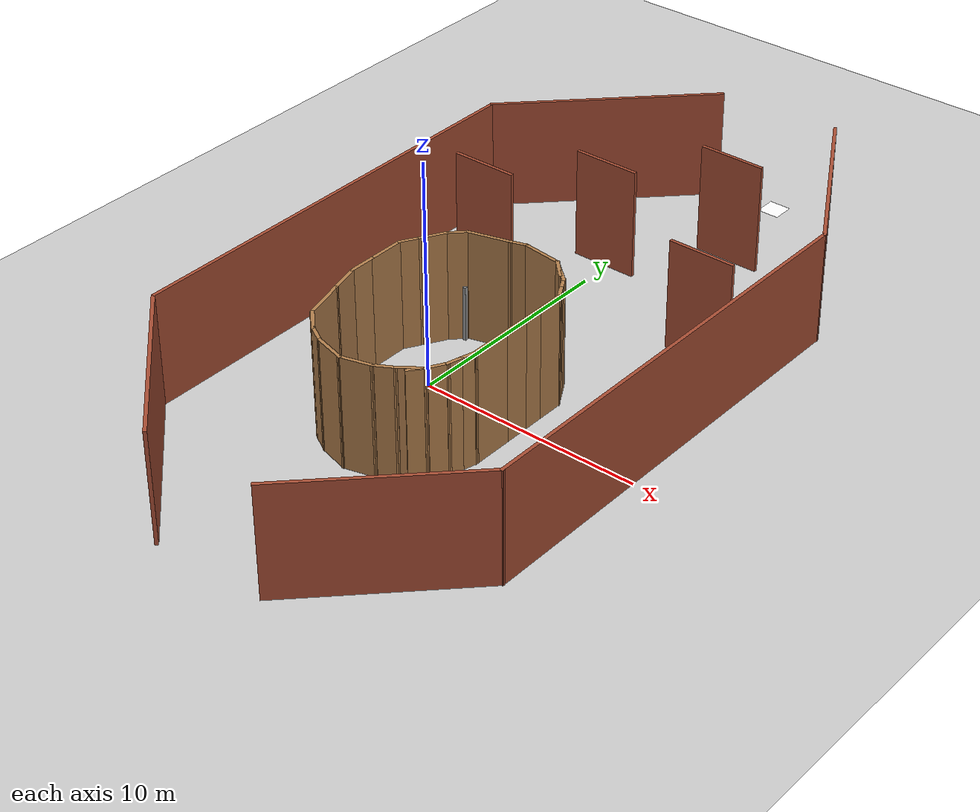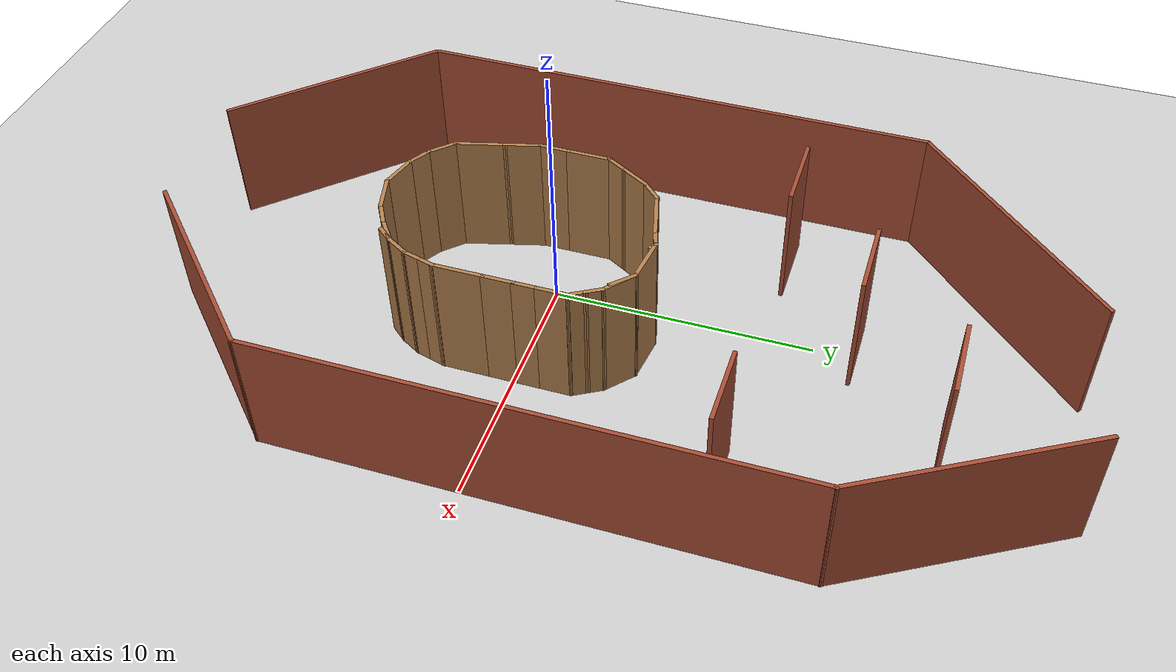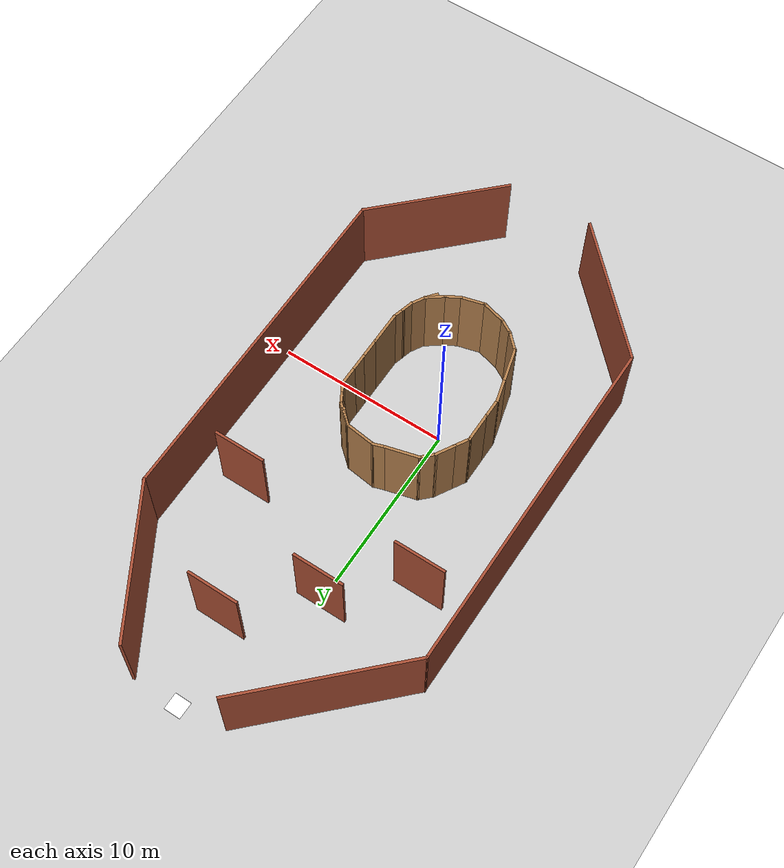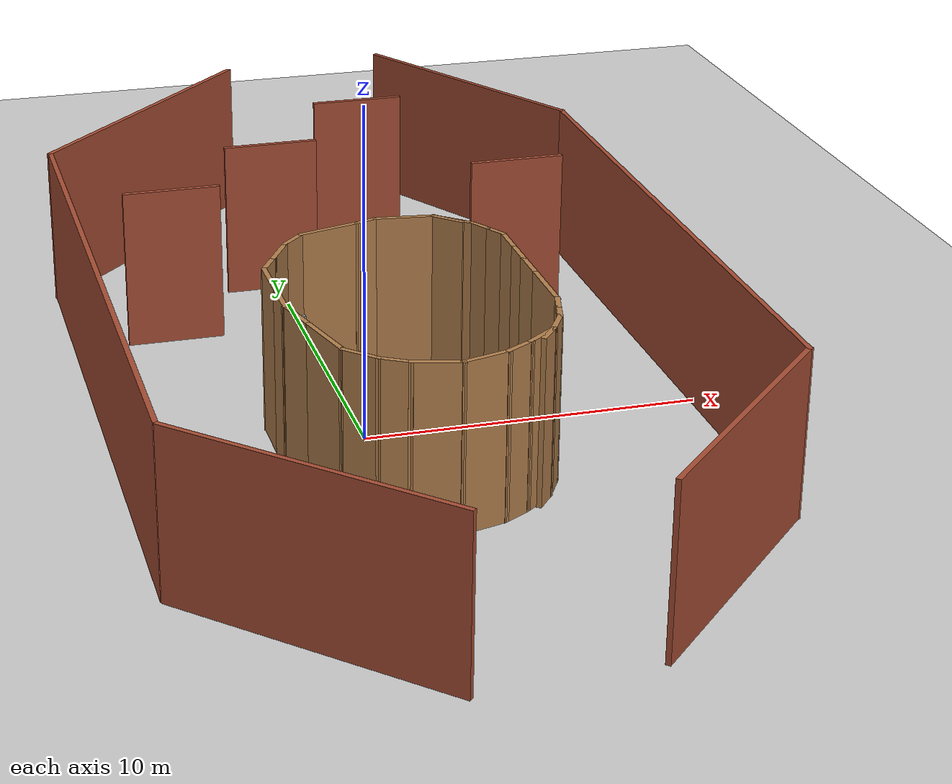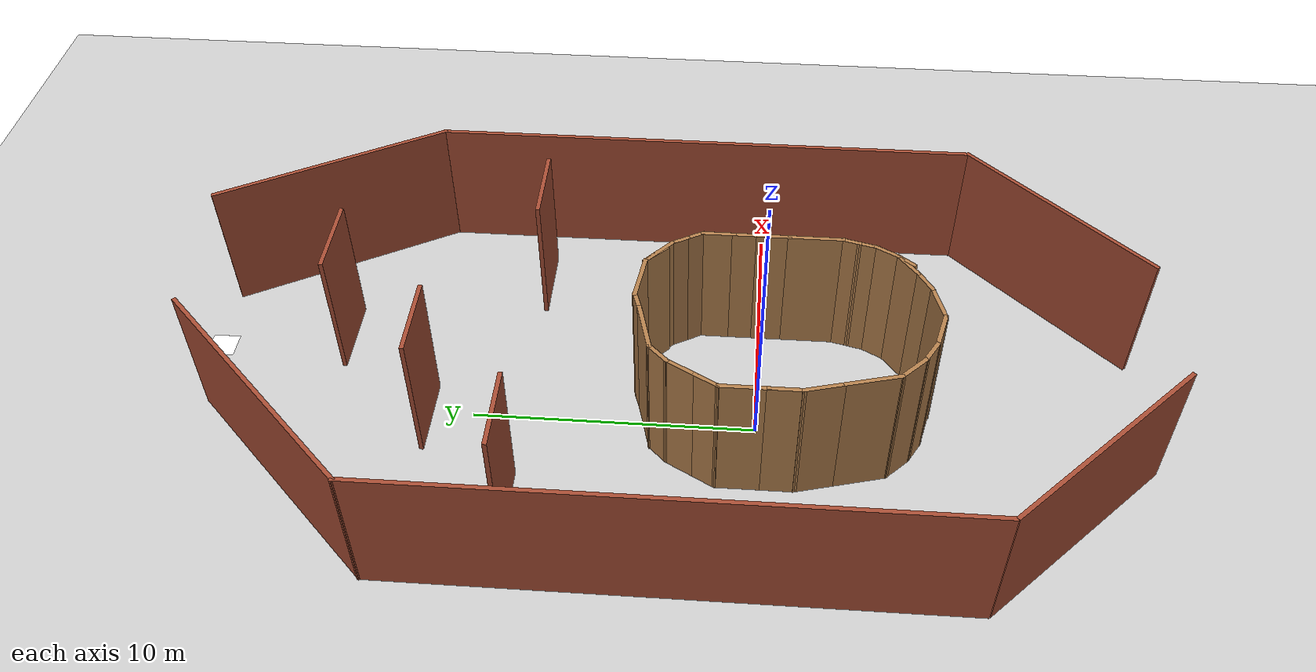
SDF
<sdf version="1.6">
 <world name="default">
  <light name="sun" type="directional">
   <pose>0 0 10 0 -0 0</pose>
   <diffuse>0.8 0.8 0.8 1</diffuse>
   <specular>0.2 0.2 0.2 1</specular>
   <attenuation>
    <range>1000</range>
    <constant>0.9</constant>
    <linear>0.01</linear>
    <quadratic>0.001</quadratic>
   </attenuation>
   <direction>-0.5 0.1 -0.9</direction>
  </light>
  <model name="ground_plane">
   <static>1</static>
   <link name="link">
    <collision name="collision">
     <geometry><plane><normal>0 0 1</normal><size>100 100</size></plane></geometry>
     <surface><friction><ode><mu>100</mu><mu2>50</mu2></ode></friction></surface>
    </collision>
    <visual name="visual">
     <cast_shadows>0</cast_shadows>
     <geometry><plane><normal>0 0 1</normal><size>100 100</size></plane></geometry>
     <material>
      <script><uri>file://media/materials/scripts/gazebo.material</uri><name>Gazebo/Grey</name></script>
     </material>
    </visual>
   </link>
  </model>
  <gravity>0 0 -9.8</gravity>
  <magnetic_field>6e-06 2.3e-05 -4.2e-05</magnetic_field>
  <atmosphere type="adiabatic"/>
  <physics name="default_physics" default="0" type="ode">
   <max_step_size>0.001</max_step_size>
   <real_time_factor>1</real_time_factor>
   <real_time_update_rate>1000</real_time_update_rate>
  </physics>
  <scene><ambient>0.4 0.4 0.4 1</ambient><background>0.7 0.7 0.7 1</background><shadows>1</shadows></scene>
  <spherical_coordinates>
   <surface_model>EARTH_WGS84</surface_model>
   <latitude_deg>0</latitude_deg>
   <longitude_deg>0</longitude_deg>
   <elevation>0</elevation>
   <heading_deg>0</heading_deg>
  </spherical_coordinates>
  <model name="test_world1">
   <pose>1.41889 3.20251 0 0 -0 0</pose>
   <link name="Wall_1">
    <collision name="Wall_1_Collision">
     <geometry><box><size>20 0.15 5</size></box></geometry>
     <pose>0 0 2.5 0 -0 0</pose>
    </collision>
    <visual name="Wall_1_Visual">
     <pose>0 0 2.5 0 -0 0</pose>
     <geometry><box><size>20 0.15 5</size></box></geometry>
     <material>
      <script><uri>file://media/materials/scripts/gazebo.material</uri><name>Gazebo/Bricks</name></script>
      <ambient>1 1 1 1</ambient>
     </material>
     <meta><layer>0</layer></meta>
    </visual>
    <pose>-8.54113 -0.692398 0 0 -0 -1.57082</pose>
   </link>
   <link name="Wall_10">
    <collision name="Wall_10_Collision">
     <geometry><box><size>0.75 0.15 5</size></box></geometry>
     <pose>0 0 2.5 0 -0 0</pose>
    </collision>
    <visual name="Wall_10_Visual">
     <pose>0 0 2.5 0 -0 0</pose>
     <geometry><box><size>0.75 0.15 5</size></box></geometry>
     <material>
      <script><uri>file://media/materials/scripts/gazebo.material</uri><name>Gazebo/Wood</name></script>
      <ambient>1 1 1 1</ambient>
     </material>
     <meta><layer>0</layer></meta>
    </visual>
    <pose>3.21111 -6.20201 0 0 -0 1.30762</pose>
   </link>
   <link name="Wall_100">
    <collision name="Wall_100_Collision">
     <geometry><box><size>9 0.15 5</size></box></geometry>
     <pose>0 0 2.5 0 -0 0</pose>
    </collision>
    <visual name="Wall_100_Visual">
     <pose>0 0 2.5 0 -0 0</pose>
     <geometry><box><size>9 0.15 5</size></box></geometry>
     <material>
      <script><uri>file://media/materials/scripts/gazebo.material</uri><name>Gazebo/Bricks</name></script>
      <ambient>1 1 1 1</ambient>
     </material>
     <meta><layer>0</layer></meta>
    </visual>
    <pose>6.32861 12.9835 0 0 -0 2.09441</pose>
   </link>
   <link name="Wall_102">
    <collision name="Wall_102_Collision">
     <geometry><box><size>3 0.15 5</size></box></geometry>
     <pose>0 0 2.5 0 -0 0</pose>
    </collision>
    <visual name="Wall_102_Visual">
     <pose>0 0 2.5 0 -0 0</pose>
     <geometry><box><size>3 0.15 5</size></box></geometry>
     <material>
      <script><uri>file://media/materials/scripts/gazebo.material</uri><name>Gazebo/Bricks</name></script>
      <ambient>1 1 1 1</ambient>
     </material>
     <meta><layer>0</layer></meta>
    </visual>
    <pose>2.18111 11.9818 0 0 -0 0</pose>
   </link>
   <link name="Wall_104">
    <collision name="Wall_104_Collision">
     <geometry><box><size>8.74983 0.15 5</size></box></geometry>
     <pose>0 0 2.5 0 -0 0</pose>
    </collision>
    <visual name="Wall_104_Visual">
     <pose>0 0 2.5 0 -0 0</pose>
     <geometry><box><size>8.74983 0.15 5</size></box></geometry>
     <material>
      <script><uri>file://media/materials/scripts/gazebo.material</uri><name>Gazebo/Bricks</name></script>
      <ambient>1 1 1 1</ambient>
     </material>
     <meta><layer>0</layer></meta>
    </visual>
    <pose>-5.45261 -13.7715 0 0 -0 -0.785398</pose>
   </link>
   <link name="Wall_106">
    <collision name="Wall_106_Collision">
     <geometry><box><size>8.5 0.15 5</size></box></geometry>
     <pose>0 0 2.5 0 -0 0</pose>
    </collision>
    <visual name="Wall_106_Visual">
     <pose>0 0 2.5 0 -0 0</pose>
     <geometry><box><size>8.5 0.15 5</size></box></geometry>
     <material>
      <script><uri>file://media/materials/scripts/gazebo.material</uri><name>Gazebo/Bricks</name></script>
      <ambient>1 1 1 1</ambient>
     </material>
     <meta><layer>0</layer></meta>
    </visual>
    <pose>5.58861 -13.6505 0 0 -0 -2.35628</pose>
   </link>
   <link name="Wall_11">
    <collision name="Wall_11_Collision">
     <geometry><box><size>2 0.15 5</size></box></geometry>
     <pose>0 0 2.5 0 -0 0</pose>
    </collision>
    <visual name="Wall_11_Visual">
     <pose>0 0 2.5 0 -0 0</pose>
     <geometry><box><size>2 0.15 5</size></box></geometry>
     <material>
      <script><uri>file://media/materials/scripts/gazebo.material</uri><name>Gazebo/Wood</name></script>
      <ambient>1 1 1 1</ambient>
     </material>
     <meta><layer>0</layer></meta>
    </visual>
    <pose>3.28911 -4.98751 0 0 -0 1.5708</pose>
   </link>
   <link name="Wall_12">
    <collision name="Wall_12_Collision">
     <geometry><box><size>1.25 0.15 5</size></box></geometry>
     <pose>0 0 2.5 0 -0 0</pose>
    </collision>
    <visual name="Wall_12_Visual">
     <pose>0 0 2.5 0 -0 0</pose>
     <geometry><box><size>1.25 0.15 5</size></box></geometry>
     <material>
      <script><uri>file://media/materials/scripts/gazebo.material</uri><name>Gazebo/Wood</name></script>
      <ambient>1 1 1 1</ambient>
     </material>
     <meta><layer>0</layer></meta>
    </visual>
    <pose>3.28911 -3.51251 0 0 -0 1.5708</pose>
   </link>
   <link name="Wall_13">
    <collision name="Wall_13_Collision">
     <geometry><box><size>1 0.15 5</size></box></geometry>
     <pose>0 0 2.5 0 -0 0</pose>
    </collision>
    <visual name="Wall_13_Visual">
     <pose>0 0 2.5 0 -0 0</pose>
     <geometry><box><size>1 0.15 5</size></box></geometry>
     <material>
      <script><uri>file://media/materials/scripts/gazebo.material</uri><name>Gazebo/Wood</name></script>
      <ambient>1 1 1 1</ambient>
     </material>
     <meta><layer>0</layer></meta>
    </visual>
    <pose>3.28911 -2.53751 0 0 -0 1.5708</pose>
   </link>
   <link name="Wall_14">
    <collision name="Wall_14_Collision">
     <geometry><box><size>1.25 0.15 5</size></box></geometry>
     <pose>0 0 2.5 0 -0 0</pose>
    </collision>
    <visual name="Wall_14_Visual">
     <pose>0 0 2.5 0 -0 0</pose>
     <geometry><box><size>1.25 0.15 5</size></box></geometry>
     <material>
      <script><uri>file://media/materials/scripts/gazebo.material</uri><name>Gazebo/Wood</name></script>
      <ambient>1 1 1 1</ambient>
     </material>
     <meta><layer>0</layer></meta>
    </visual>
    <pose>3.28911 -1.56251 0 0 -0 1.5708</pose>
   </link>
   <link name="Wall_15">
    <collision name="Wall_15_Collision">
     <geometry><box><size>0.75 0.15 5</size></box></geometry>
     <pose>0 0 2.5 0 -0 0</pose>
    </collision>
    <visual name="Wall_15_Visual">
     <pose>0 0 2.5 0 -0 0</pose>
     <geometry><box><size>0.75 0.15 5</size></box></geometry>
     <material>
      <script><uri>file://media/materials/scripts/gazebo.material</uri><name>Gazebo/Wood</name></script>
      <ambient>1 1 1 1</ambient>
     </material>
     <meta><layer>0</layer></meta>
    </visual>
    <pose>3.13911 -0.752511 0 0 -0 2.09408</pose>
   </link>
   <link name="Wall_16">
    <collision name="Wall_16_Collision">
     <geometry><box><size>0.75 0.15 5</size></box></geometry>
     <pose>0 0 2.5 0 -0 0</pose>
    </collision>
    <visual name="Wall_16_Visual">
     <pose>0 0 2.5 0 -0 0</pose>
     <geometry><box><size>0.75 0.15 5</size></box></geometry>
     <material>
      <script><uri>file://media/materials/scripts/gazebo.material</uri><name>Gazebo/Wood</name></script>
      <ambient>1 1 1 1</ambient>
     </material>
     <meta><layer>0</layer></meta>
    </visual>
    <pose>2.83911 -0.233011 0 0 -0 2.09491</pose>
   </link>
   <link name="Wall_17">
    <collision name="Wall_17_Collision">
     <geometry><box><size>1.44839 0.15 5</size></box></geometry>
     <pose>0 0 2.5 0 -0 0</pose>
    </collision>
    <visual name="Wall_17_Visual">
     <pose>0 0 2.5 0 -0 0</pose>
     <geometry><box><size>1.44839 0.15 5</size></box></geometry>
     <material>
      <script><uri>file://media/materials/scripts/gazebo.material</uri><name>Gazebo/Wood</name></script>
      <ambient>1 1 1 1</ambient>
     </material>
     <meta><layer>0</layer></meta>
    </visual>
    <pose>2.19911 0.452489 0 0 -0 2.42595</pose>
   </link>
   <link name="Wall_18">
    <collision name="Wall_18_Collision">
     <geometry><box><size>1.11425 0.15 5</size></box></geometry>
     <pose>0 0 2.5 0 -0 0</pose>
    </collision>
    <visual name="Wall_18_Visual">
     <pose>0 0 2.5 0 -0 0</pose>
     <geometry><box><size>1.11425 0.15 5</size></box></geometry>
     <material>
      <script><uri>file://media/materials/scripts/gazebo.material</uri><name>Gazebo/Wood</name></script>
      <ambient>1 1 1 1</ambient>
     </material>
     <meta><layer>0</layer></meta>
    </visual>
    <pose>2.05211 0.539989 0 0 -0 -0.778795</pose>
   </link>
   <link name="Wall_3">
    <collision name="Wall_3_Collision">
     <geometry><box><size>20 0.15 5</size></box></geometry>
     <pose>0 0 2.5 0 -0 0</pose>
    </collision>
    <visual name="Wall_3_Visual">
     <pose>0 0 2.5 0 -0 0</pose>
     <geometry><box><size>20 0.15 5</size></box></geometry>
     <material>
      <script><uri>file://media/materials/scripts/gazebo.material</uri><name>Gazebo/Bricks</name></script>
      <ambient>1 1 1 1</ambient>
     </material>
     <meta><layer>0</layer></meta>
    </visual>
    <pose>8.54111 -0.773511 0 0 -0 1.5708</pose>
   </link>
   <link name="Wall_31">
    <collision name="Wall_31_Collision">
     <geometry><box><size>1 0.15 5</size></box></geometry>
     <pose>0 0 2.5 0 -0 0</pose>
    </collision>
    <visual name="Wall_31_Visual">
     <pose>0 0 2.5 0 -0 0</pose>
     <geometry><box><size>1 0.15 5</size></box></geometry>
     <material>
      <script><uri>file://media/materials/scripts/gazebo.material</uri><name>Gazebo/Wood</name></script>
      <ambient>1 1 1 1</ambient>
     </material>
     <meta><layer>0</layer></meta>
    </visual>
    <pose>1.33711 -8.66101 0 0 -0 -2.61792</pose>
   </link>
   <link name="Wall_32">
    <collision name="Wall_32_Collision">
     <geometry><box><size>1.5 0.15 5</size></box></geometry>
     <pose>0 0 2.5 0 -0 0</pose>
    </collision>
    <visual name="Wall_32_Visual">
     <pose>0 0 2.5 0 -0 0</pose>
     <geometry><box><size>1.5 0.15 5</size></box></geometry>
     <material>
      <script><uri>file://media/materials/scripts/gazebo.material</uri><name>Gazebo/Wood</name></script>
      <ambient>1 1 1 1</ambient>
     </material>
     <meta><layer>0</layer></meta>
    </visual>
    <pose>0.317109 -9.04801 0 0 -0 -2.88008</pose>
   </link>
   <link name="Wall_33">
    <collision name="Wall_33_Collision">
     <geometry><box><size>1.5 0.15 5</size></box></geometry>
     <pose>0 0 2.5 0 -0 0</pose>
    </collision>
    <visual name="Wall_33_Visual">
     <pose>0 0 2.5 0 -0 0</pose>
     <geometry><box><size>1.5 0.15 5</size></box></geometry>
     <material>
      <script><uri>file://media/materials/scripts/gazebo.material</uri><name>Gazebo/Wood</name></script>
      <ambient>1 1 1 1</ambient>
     </material>
     <meta><layer>0</layer></meta>
    </visual>
    <pose>-0.986891 -9.04801 0 0 -0 2.88008</pose>
   </link>
   <link name="Wall_34">
    <collision name="Wall_34_Collision">
     <geometry><box><size>1 0.15 5</size></box></geometry>
     <pose>0 0 2.5 0 -0 0</pose>
    </collision>
    <visual name="Wall_34_Visual">
     <pose>0 0 2.5 0 -0 0</pose>
     <geometry><box><size>1 0.15 5</size></box></geometry>
     <material>
      <script><uri>file://media/materials/scripts/gazebo.material</uri><name>Gazebo/Wood</name></script>
      <ambient>1 1 1 1</ambient>
     </material>
     <meta><layer>0</layer></meta>
    </visual>
    <pose>-2.00739 -8.66101 0 0 -0 2.61851</pose>
   </link>
   <link name="Wall_44">
    <collision name="Wall_44_Collision">
     <geometry><box><size>0.15 0.15 2.5</size></box></geometry>
     <pose>0 0 1.25 0 -0 0</pose>
    </collision>
    <visual name="Wall_44_Visual">
     <pose>0 0 1.25 0 -0 0</pose>
     <geometry><box><size>0.15 0.15 2.5</size></box></geometry>
     <material>
      <script><uri>file://media/materials/scripts/gazebo.material</uri><name>Gazebo/Grey</name></script>
      <ambient>1 1 1 1</ambient>
     </material>
     <meta><layer>0</layer></meta>
    </visual>
    <pose>-2.4252 0.213611 0 0 -0 0</pose>
   </link>
   <link name="Wall_52">
    <collision name="Wall_52_Collision">
     <geometry><box><size>1.25 0.15 5</size></box></geometry>
     <pose>0 0 2.5 0 -0 0</pose>
    </collision>
    <visual name="Wall_52_Visual">
     <pose>0 0 2.5 0 -0 0</pose>
     <geometry><box><size>1.25 0.15 5</size></box></geometry>
     <material>
      <script><uri>file://media/materials/scripts/gazebo.material</uri><name>Gazebo/Wood</name></script>
      <ambient>1 1 1 1</ambient>
     </material>
     <meta><layer>0</layer></meta>
    </visual>
    <pose>-2.76439 -8.05951 0 0 -0 2.35555</pose>
   </link>
   <link name="Wall_53">
    <collision name="Wall_53_Collision">
     <geometry><box><size>2 0.15 5</size></box></geometry>
     <pose>0 0 2.5 0 -0 0</pose>
    </collision>
    <visual name="Wall_53_Visual">
     <pose>0 0 2.5 0 -0 0</pose>
     <geometry><box><size>2 0.15 5</size></box></geometry>
     <material>
      <script><uri>file://media/materials/scripts/gazebo.material</uri><name>Gazebo/Wood</name></script>
      <ambient>1 1 1 1</ambient>
     </material>
     <meta><layer>0</layer></meta>
    </visual>
    <pose>-3.39239 -6.77701 0 0 -0 1.83269</pose>
   </link>
   <link name="Wall_54">
    <collision name="Wall_54_Collision">
     <geometry><box><size>1.5 0.15 5</size></box></geometry>
     <pose>0 0 2.5 0 -0 0</pose>
    </collision>
    <visual name="Wall_54_Visual">
     <pose>0 0 2.5 0 -0 0</pose>
     <geometry><box><size>1.5 0.15 5</size></box></geometry>
     <material>
      <script><uri>file://media/materials/scripts/gazebo.material</uri><name>Gazebo/Wood</name></script>
      <ambient>1 1 1 1</ambient>
     </material>
     <meta><layer>0</layer></meta>
    </visual>
    <pose>-3.80689 -5.23151 0 0 -0 1.83302</pose>
   </link>
   <link name="Wall_55">
    <collision name="Wall_55_Collision">
     <geometry><box><size>1.25 0.15 5</size></box></geometry>
     <pose>0 0 2.5 0 -0 0</pose>
    </collision>
    <visual name="Wall_55_Visual">
     <pose>0 0 2.5 0 -0 0</pose>
     <geometry><box><size>1.25 0.15 5</size></box></geometry>
     <material>
      <script><uri>file://media/materials/scripts/gazebo.material</uri><name>Gazebo/Wood</name></script>
      <ambient>1 1 1 1</ambient>
     </material>
     <meta><layer>0</layer></meta>
    </visual>
    <pose>-3.98189 -4.02951 0 0 -0 1.5708</pose>
   </link>
   <link name="Wall_56">
    <collision name="Wall_56_Collision">
     <geometry><box><size>1.75 0.15 5</size></box></geometry>
     <pose>0 0 2.5 0 -0 0</pose>
    </collision>
    <visual name="Wall_56_Visual">
     <pose>0 0 2.5 0 -0 0</pose>
     <geometry><box><size>1.75 0.15 5</size></box></geometry>
     <material>
      <script><uri>file://media/materials/scripts/gazebo.material</uri><name>Gazebo/Wood</name></script>
      <ambient>1 1 1 1</ambient>
     </material>
     <meta><layer>0</layer></meta>
    </visual>
    <pose>-3.98189 -2.67951 0 0 -0 1.5708</pose>
   </link>
   <link name="Wall_57">
    <collision name="Wall_57_Collision">
     <geometry><box><size>1 0.15 5</size></box></geometry>
     <pose>0 0 2.5 0 -0 0</pose>
    </collision>
    <visual name="Wall_57_Visual">
     <pose>0 0 2.5 0 -0 0</pose>
     <geometry><box><size>1 0.15 5</size></box></geometry>
     <material>
      <script><uri>file://media/materials/scripts/gazebo.material</uri><name>Gazebo/Wood</name></script>
      <ambient>1 1 1 1</ambient>
     </material>
     <meta><layer>0</layer></meta>
    </visual>
    <pose>-3.76939 -1.51151 0 0 -0 1.04713</pose>
   </link>
   <link name="Wall_58">
    <collision name="Wall_58_Collision">
     <geometry><box><size>1.25 0.15 5</size></box></geometry>
     <pose>0 0 2.5 0 -0 0</pose>
    </collision>
    <visual name="Wall_58_Visual">
     <pose>0 0 2.5 0 -0 0</pose>
     <geometry><box><size>1.25 0.15 5</size></box></geometry>
     <material>
      <script><uri>file://media/materials/scripts/gazebo.material</uri><name>Gazebo/Wood</name></script>
      <ambient>1 1 1 1</ambient>
     </material>
     <meta><layer>0</layer></meta>
    </visual>
    <pose>-3.28189 -0.667011 0 0 -0 1.04737</pose>
   </link>
   <link name="Wall_59">
    <collision name="Wall_59_Collision">
     <geometry><box><size>1 0.15 5</size></box></geometry>
     <pose>0 0 2.5 0 -0 0</pose>
    </collision>
    <visual name="Wall_59_Visual">
     <pose>0 0 2.5 0 -0 0</pose>
     <geometry><box><size>1 0.15 5</size></box></geometry>
     <material>
      <script><uri>file://media/materials/scripts/gazebo.material</uri><name>Gazebo/Wood</name></script>
      <ambient>1 1 1 1</ambient>
     </material>
     <meta><layer>0</layer></meta>
    </visual>
    <pose>-2.70639 0.109989 0 0 -0 0.785398</pose>
   </link>
   <link name="Wall_60">
    <collision name="Wall_60_Collision">
     <geometry><box><size>2 0.15 5</size></box></geometry>
     <pose>0 0 2.5 0 -0 0</pose>
    </collision>
    <visual name="Wall_60_Visual">
     <pose>0 0 2.5 0 -0 0</pose>
     <geometry><box><size>2 0.15 5</size></box></geometry>
     <material>
      <script><uri>file://media/materials/scripts/gazebo.material</uri><name>Gazebo/Wood</name></script>
      <ambient>1 1 1 1</ambient>
     </material>
     <meta><layer>0</layer></meta>
    </visual>
    <pose>-1.51239 0.649989 0 0 -0 0.261891</pose>
   </link>
   <link name="Wall_61">
    <collision name="Wall_61_Collision">
     <geometry><box><size>0.810025 0.15 5</size></box></geometry>
     <pose>0 0 2.5 0 -0 0</pose>
    </collision>
    <visual name="Wall_61_Visual">
     <pose>0 0 2.5 0 -0 0</pose>
     <geometry><box><size>0.810025 0.15 5</size></box></geometry>
     <material>
      <script><uri>file://media/materials/scripts/gazebo.material</uri><name>Gazebo/Wood</name></script>
      <ambient>1 1 1 1</ambient>
     </material>
     <meta><layer>0</layer></meta>
    </visual>
    <pose>-0.304891 0.991489 0 0 -0 0.314088</pose>
   </link>
   <link name="Wall_62">
    <collision name="Wall_62_Collision">
     <geometry><box><size>1.86399 0.15 5</size></box></geometry>
     <pose>0 0 2.5 0 -0 0</pose>
    </collision>
    <visual name="Wall_62_Visual">
     <pose>0 0 2.5 0 -0 0</pose>
     <geometry><box><size>1.86399 0.15 5</size></box></geometry>
     <material>
      <script><uri>file://media/materials/scripts/gazebo.material</uri><name>Gazebo/Wood</name></script>
      <ambient>1 1 1 1</ambient>
     </material>
     <meta><layer>0</layer></meta>
    </visual>
    <pose>0.859109 0.985989 0 0 -0 -0.125803</pose>
   </link>
   <link name="Wall_65">
    <collision name="Wall_65_Collision">
     <geometry><box><size>1.21294 0.15 5</size></box></geometry>
     <pose>0 0 2.5 0 -0 0</pose>
    </collision>
    <visual name="Wall_65_Visual">
     <pose>0 0 2.5 0 -0 0</pose>
     <geometry><box><size>1.21294 0.15 5</size></box></geometry>
     <material>
      <script><uri>file://media/materials/scripts/gazebo.material</uri><name>Gazebo/Wood</name></script>
      <ambient>1 1 1 1</ambient>
     </material>
     <meta><layer>0</layer></meta>
    </visual>
    <pose>2.12911 -8.12801 0 0 -0 0.647264</pose>
   </link>
   <link name="Wall_7">
    <collision name="Wall_7_Collision">
     <geometry><box><size>0.820057 0.15 5</size></box></geometry>
     <pose>0 0 2.5 0 -0 0</pose>
    </collision>
    <visual name="Wall_7_Visual">
     <pose>0 0 2.5 0 -0 0</pose>
     <geometry><box><size>0.820057 0.15 5</size></box></geometry>
     <material>
      <script><uri>file://media/materials/scripts/gazebo.material</uri><name>Gazebo/Wood</name></script>
      <ambient>1 1 1 1</ambient>
     </material>
     <meta><layer>0</layer></meta>
    </visual>
    <pose>2.34161 -8.06751 0 0 -0 0.887901</pose>
   </link>
   <link name="Wall_8">
    <collision name="Wall_8_Collision">
     <geometry><box><size>1 0.15 5</size></box></geometry>
     <pose>0 0 2.5 0 -0 0</pose>
    </collision>
    <visual name="Wall_8_Visual">
     <pose>0 0 2.5 0 -0 0</pose>
     <geometry><box><size>1 0.15 5</size></box></geometry>
     <material>
      <script><uri>file://media/materials/scripts/gazebo.material</uri><name>Gazebo/Wood</name></script>
      <ambient>1 1 1 1</ambient>
     </material>
     <meta><layer>0</layer></meta>
    </visual>
    <pose>2.76561 -7.43951 0 0 -0 1.04713</pose>
   </link>
   <link name="Wall_87">
    <collision name="Wall_87_Collision">
     <geometry><box><size>3 0.15 5</size></box></geometry>
     <pose>0 0 2.5 0 -0 0</pose>
    </collision>
    <visual name="Wall_87_Visual">
     <pose>0 0 2.5 0 -0 0</pose>
     <geometry><box><size>3 0.15 5</size></box></geometry>
     <material>
      <script><uri>file://media/materials/scripts/gazebo.material</uri><name>Gazebo/Bricks</name></script>
      <ambient>1 1 1 1</ambient>
     </material>
     <meta><layer>0</layer></meta>
    </visual>
    <pose>-5.41089 5.00249 0 0 -0 0</pose>
   </link>
   <link name="Wall_9">
    <collision name="Wall_9_Collision">
     <geometry><box><size>0.75 0.15 5</size></box></geometry>
     <pose>0 0 2.5 0 -0 0</pose>
    </collision>
    <visual name="Wall_9_Visual">
     <pose>0 0 2.5 0 -0 0</pose>
     <geometry><box><size>0.75 0.15 5</size></box></geometry>
     <material>
      <script><uri>file://media/materials/scripts/gazebo.material</uri><name>Gazebo/Wood</name></script>
      <ambient>1 1 1 1</ambient>
     </material>
     <meta><layer>0</layer></meta>
    </visual>
    <pose>3.05561 -6.78151 0 0 -0 1.30966</pose>
   </link>
   <link name="Wall_90">
    <collision name="Wall_90_Collision">
     <geometry><box><size>3 0.15 5</size></box></geometry>
     <pose>0 0 2.5 0 -0 0</pose>
    </collision>
    <visual name="Wall_90_Visual">
     <pose>0 0 2.5 0 -0 0</pose>
     <geometry><box><size>3 0.15 5</size></box></geometry>
     <material>
      <script><uri>file://media/materials/scripts/gazebo.material</uri><name>Gazebo/Bricks</name></script>
      <ambient>1 1 1 1</ambient>
     </material>
     <meta><layer>0</layer></meta>
    </visual>
    <pose>5.62111 4.97049 0 0 -0 0</pose>
   </link>
   <link name="Wall_92">
    <collision name="Wall_92_Collision">
     <geometry><box><size>3 0.15 5</size></box></geometry>
     <pose>0 0 2.5 0 -0 0</pose>
    </collision>
    <visual name="Wall_92_Visual">
     <pose>0 0 2.5 0 -0 0</pose>
     <geometry><box><size>3 0.15 5</size></box></geometry>
     <material>
      <script><uri>file://media/materials/scripts/gazebo.material</uri><name>Gazebo/Bricks</name></script>
      <ambient>1 1 1 1</ambient>
     </material>
     <meta><layer>0</layer></meta>
    </visual>
    <pose>-1.60289 8.34949 0 0 -0 0</pose>
   </link>
   <link name="Wall_98">
    <collision name="Wall_98_Collision">
     <geometry><box><size>10.25 0.15 5</size></box></geometry>
     <pose>0 0 2.5 0 -0 0</pose>
    </collision>
    <visual name="Wall_98_Visual">
     <pose>0 0 2.5 0 -0 0</pose>
     <geometry><box><size>10.25 0.15 5</size></box></geometry>
     <material>
      <script><uri>file://media/materials/scripts/gazebo.material</uri><name>Gazebo/Bricks</name></script>
      <ambient>1 1 1 1</ambient>
     </material>
     <meta><layer>0</layer></meta>
    </visual>
    <pose>-4.97039 12.8035 0 0 -0 0.785468</pose>
   </link>
   <static>1</static>
  </model>
  <model name="aruco_visual_marker_0">
   <link name="marker">
    <visual name="visual">
     <geometry><box><size>1 1 1e-05</size></box></geometry>
     <material>
      <script>
       <uri>model://aruco_visual_marker_0/materials/scripts</uri>
       <uri>model://aruco_visual_marker_0/materials/textures</uri>
       <name>ArucoVisualMarker0/Marker</name>
      </script>
      <ambient>1 1 1 1</ambient>
      <diffuse>1 1 1 1</diffuse>
      <specular>0 0 0 1</specular>
      <emissive>1 1 1 0</emissive>
      <shader type="vertex"><normal_map>__default__</normal_map></shader>
     </material>
    </visual>
    <collision name="collision"><geometry><box><size>0.1778 0.1778 1e-05</size></box></geometry></collision>
   </link>
   <link name="marker_pad">
    <pose frame="marker">0 0 -1e-05 0 -0 0</pose>
    <visual name="visual">
     <geometry><box><size>0.1778 0.1778 1e-05</size></box></geometry>
     <material>
      <lighting>1</lighting>
      <script><uri>file://media/materials/scripts/gazebo.material</uri><name>Gazebo/White</name></script>
      <ambient>0.3 0.3 0.3 1</ambient>
      <diffuse>0.7 0.7 0.7 1</diffuse>
      <specular>0.01 0.01 0.01 1</specular>
      <emissive>1 1 1 0</emissive>
      <shader type="vertex"><normal_map>__default__</normal_map></shader>
     </material>
    </visual>
    <collision name="collision"><geometry><box><size>0.1778 0.1778 1e-05</size></box></geometry></collision>
   </link>
   <joint name="marker_JOINT_marker_pad" type="revolute">
    <parent>marker</parent>
    <child>marker_pad</child>
    <axis>
     <xyz>0 0 1</xyz>
     <limit><upper>0</upper><lower>0</lower></limit>
     <use_parent_model_frame>0</use_parent_model_frame>
     <dynamics><spring_reference>0</spring_reference><spring_stiffness>0</spring_stiffness></dynamics>
    </axis>
   </joint>
   <static>1</static>
   <pose>2.81786 19.984 0 0 -0 0</pose>
  </model>
 </world>
</sdf>
